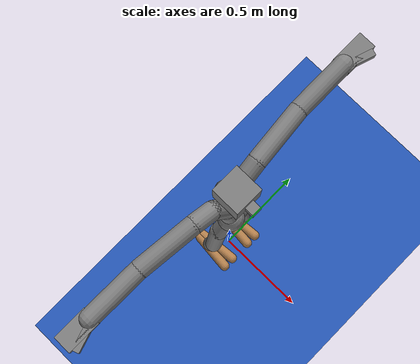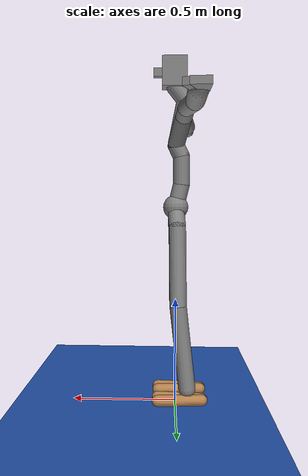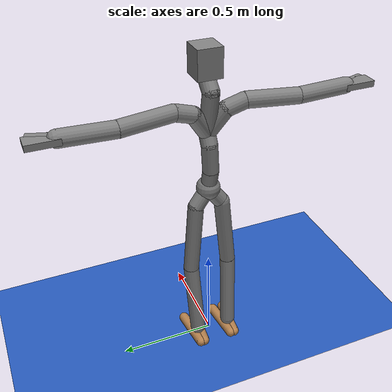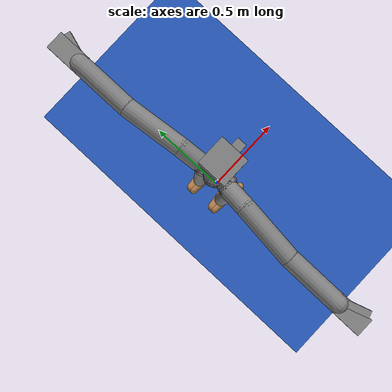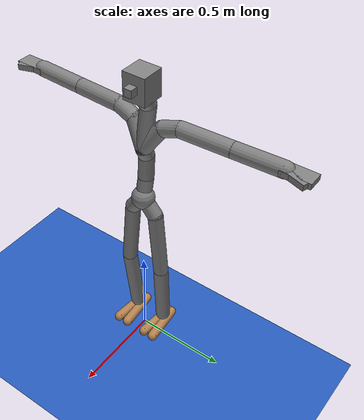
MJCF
<mujoco model="common-rig">
    <!--
            Robot Intelligence Lab
            Common Rig (Custom Humanoid) model

            @ Contact us : taemoon-jeong (motor_moon94@korea.ac.kr)
    -->
    <statistic extent="2" center="0 0 1"/>
    <compiler autolimits="true" inertiafromgeom="true" angle="radian"/>

    <default>
        <site size=".04" group="3"/>
        <motor ctrlrange="-1. 1." ctrllimited="true"/>
        <default class="body">
            <!-- geoms -->
            <geom type="capsule" condim="1" solimp=".9 .99 .003" solref=".015 1" material="self" density="800" />
            <default class="thigh">
                <geom size=".06"/>
            </default>
            <default class="shin">
                <geom fromto="0 0 0 0 0 -.3"  size=".049"/>
            </default>
            <default class="foot">
                <geom size=".027"/>
                <default class="foot1">
                    <geom fromto="-.07 -.01 -0.05 .14 -.03 -0.05"/>
                </default>
                <default class="foot2">
                    <geom fromto="-.07 .01 -0.05 .14  .03 -0.05"/>
                </default>
            </default>

            <!-- joints -->
            <joint type="hinge" damping="1" stiffness="5" armature=".01" limited="true" solimplimit="0 .99 .01"/>
            <default class="joint_big">
                <joint damping="5" stiffness="10"/>
                <default class="hip_x">
                <joint/>
                </default>
                <default class="hip_z">
                <joint/>
                </default>
                <default class="hip_y">
                <joint axis="0 1 0"/>
                </default>
                <default class="joint_big_stiff">
                <joint stiffness="20"/>
                </default>
            </default>
            <default class="knee">
                <joint pos="0 0 .02"/>
            </default>
            <default class="ankle">
                <joint/>
                <default class="ankle_y">
                <joint pos="0 0 .08" axis="0 1 0" stiffness="6"/>
                </default>
                <default class="ankle_x">
                <joint pos="0 0 .04" stiffness="3"/>
                </default>
            </default>
            <default class="shoulder">
                <joint />
            </default>
            <default class="elbow">
                <joint stiffness="0"/>
            </default>

            <!-- tracking site -->
            <default class="tracking_site">
                <site type="sphere" size="0.027" rgba="1 0 0 1" group="3"/>
            </default>
        </default>
    </default>

    <visual>
        <rgba haze="0.15 0.25 0.35 1"/>
        <quality shadowsize="2048"/>
        <global offwidth="800" offheight="800"/>
    </visual>

    <asset>
        <texture name="texgeom" type="cube" builtin="flat" mark="cross" width="127" height="1278"
            rgb1="0.8 0.6 0.4" rgb2="0.8 0.6 0.4" markrgb="1 1 1" random="0.01"/>
        <material name="matgeom" texture="texgeom" texuniform="true" rgba="0.8 0.6 0.4 1.0"/>
        <material name="self" rgba=".7 .5 .3 1"/>
        <texture name="blue_grid" type="2d" builtin="checker" rgb1=".02 .14 .44" rgb2=".27 .55 1" width="300" height="300" mark="edge" markrgb="1 1 1"/>
        <material name="blue_grid" texture="blue_grid" texrepeat="1 1" texuniform="true" reflectance=".2"/>
    </asset>

    <worldbody>
        <geom name="floor" type="plane" conaffinity="1" size="50 50 .05" material="blue_grid"/>
        <body name="base" pos="0 0 0.95">
            <freejoint name="base"/>
            <geom name="base" type="sphere" pos="0 0 0" size="0.06"/>
            <body name="pelvis" pos="0 0 0" euler="0 0 0" >
                <site name="tracking[pelvis]" class="tracking_site" pos="0 0 0.075" size=".05" />
                <geom name="base2lpelvis" type="capsule" fromto="0 0 0 -0.006815334782004356 0.06951973587274551 -0.09140622615814209"  size="0.04" />
                <geom name="base2rpelvis" type="capsule" fromto="0 0 0 -0.004319818690419197 -0.06767047941684723 -0.09052169322967529"  size="0.04" />
                <site name="pelvis_site" pos="0 0 0" size="0.01"/>
                <joint name="pelvis1" type="hinge" pos="0 0 0" axis="1 0 0" range="-1.5 1.5" armature="0.02" class="joint_big"/>
                <joint name="pelvis2" type="hinge" pos="0 0 0" axis="0 1 0" range="-1.5 1.5" armature="0.02" class="joint_big"/>
                <joint name="pelvis3" type="hinge" pos="0 0 0" axis="0 0 1" range="-1.5 1.5" armature="0.02" class="joint_big_stiff"/>

                <body name="left_hip" pos="-0.006815334782004356 0.06951973587274551 -0.09140622615814209" euler="0 0 0">
                    <geom name="lhip2lknee" type="capsule" fromto="0 0 0 -0.004495806992 0.03427654505 -0.3751985729"  size="0.04" />
                    <site name="lhip2lknee" type="capsule" fromto="0 0 0 -0.004495806992 0.03427654505 -0.3751985729"  size="0.04" />
                    <joint name="l_hip1" type="hinge" pos="0 0 0" axis="1 0 0" range="-0.3 0.3" armature="0.01" class="hip_x"/>
                    <joint name="l_hip2" type="hinge" pos="0 0 0" axis="0 1 0" range="-1.5 0.3" armature="0.01" class="hip_y"/>
                    <joint name="l_hip3" type="hinge" pos="0 0 0" axis="0 0 1" range="-0.5 0.3" armature="0.01" class="hip_z"/>
                    <body name="left_knee" pos="-0.004495806992 0.03427654505 -0.3751985729" euler="0 0 0">
                        <geom name="lknee2lankle" type="capsule" fromto="0 0 0 -0.04369332828 -0.01359570026 -0.3979604542"  size="0.04" />
                        <site name="lknee2lankle" type="capsule" fromto="0 0 0 -0.04369332828 -0.01359570026 -0.3979604542"  size="0.04" />
                        <joint name="l_knee" type="hinge" pos="0 0 0" axis="0 1 0" range="0.0175 2.0944" armature="0.0060" class="knee"/>
                        <body name="left_ankle" pos="-0.04369332828 -0.01359570026 -0.3979604542" euler="0 0 0">
                            <site name="lankle" type="box" pos="0 0 -0.025" size="0.03 0.03 0.025" />
                            <geom name="foot1_left" class="foot1"/>
                            <geom name="foot2_left" class="foot2"/>

                            <site name="foot_left" pos=".05 -.03 -0.05" type="sphere" rgba="0 1 0 1"  size=".027"/>
                            <site name="sp0" pos="-.07 0 -0.05" type="sphere" size=".027"/>
                            <site name="sp1" pos=".14 0 -0.05" type="sphere" size=".027"/>
                            <joint name="l_ankle1" type="hinge" pos="0 0 0" axis="0 1 0" range="-0.3 0.3"  armature="0.0008" class="ankle_y"/>
                            <joint name="l_ankle2" type="hinge" pos="0 0 0" axis="1 0 0" range="-0.3 0.3" armature="0.0006" class="ankle_x"/>
                            <joint name="l_ankle3" type="hinge" pos="0 0 0" axis="0 0 1" range="-0. 0.01" armature="0.0006" />
                        </body>
                    </body>
                </body>

                <body name="right_hip" pos="-0.006815334782004356 -0.06951973587274551 -0.09140622615814209" euler="0 0 0">
                    <geom name="rhip2rknee" type="capsule" fromto="0 0 0 -0.004495806992 -0.03427654505 -0.3751985729"  size="0.04" />
                    <site name="rhip2rknee" type="capsule" fromto="0 0 0 -0.004495806992 -0.03427654505 -0.3751985729"  size="0.04" />
                    <joint name="r_hip1" type="hinge" pos="0 0 0" axis="1 0 0" range="-0.3 0.3" armature="0.01" class="hip_x"/>
                    <joint name="r_hip2" type="hinge" pos="0 0 0" axis="0 1 0" range="-1.5 0.3" armature="0.01" class="hip_y"/>
                    <joint name="r_hip3" type="hinge" pos="0 0 0" axis="0 0 1" range="-0.5 0.3" armature="0.01" class="hip_z"/>
                    <body name="right_knee" pos="-0.004495806992 -0.03427654505 -0.3751985729" euler="0 0 0" >
                        <geom name="rknee2rankle" type="capsule" fromto="0 0 0 -0.04369332828 0.01359570026 -0.3979604542"  size="0.04" />
                        <site name="rknee2rankle" type="capsule" fromto="0 0 0 -0.04369332828 0.01359570026 -0.3979604542"  size="0.04" />
                        <joint name="r_knee" type="hinge" pos="0 0 0" axis="0 1 0" range="0.0175 2.0944" armature="0.0060" class="knee"/>
                        <body name="right_ankle" pos="-0.04369332828 0.01359570026 -0.3979604542" euler="0 0 0">
                            <site name="rankle" type="box" pos="0 0 -0.025" size="0.03 0.03 0.025" />
                            <geom name="foot1_right" class="foot1"/>
                            <geom name="foot2_right" class="foot2"/>

                            <site name="foot_right" pos=".05 .03 -0.05" type="sphere" size=".027" rgba="0 1 0 1" />
                            <site name="sp2" pos="-.07 0 -0.05" type="sphere" size=".027"/>
                            <site name="sp3" pos=".14 0 -0.05" type="sphere" size=".027"/>
                            <joint name="r_ankle1" type="hinge" pos="0 0 0" axis="0 1 0" range="-0.3 0.3" armature="0.0008" class="ankle_y"/>
                            <joint name="r_ankle2" type="hinge" pos="0 0 0" axis="1 0 0" range="-0.3 0.3" armature="0.0006" class="ankle_x"/>
                            <joint name="r_ankle3" type="hinge" pos="0 0 0" axis="0 0 1" range="-0. 0.01" armature="0.0006" />
                        </body>
                    </body>
                </body>

                <geom name="base2spine1" type="capsule" fromto="0 0 0 -0.02669631317257881 -0.00253287423402071 0.10896323621273041"  size="0.04"/>
                <site name="base2spine1" type="capsule" fromto="0 0 0 -0.02669631317257881 -0.00253287423402071 0.10896323621273041"  size="0.04" />
                <body name="spine1" pos="-0.02669631317257881 -0.00253287423402071 0.10896323621273041" euler="0 0 0" >
                    <geom name="spine2spine" type="capsule" fromto="0 0 0 0.001092471182 0.005487040151 0.1351804286"  size="0.04"/>
                    <joint name="spine1" type="hinge" pos="0 0 0" axis="0 1 0" range="-1.5 1.5" armature="0.02" class="joint_big"/>

                    <body name="spine2" pos="0.001092471182 0.005487040151 0.1351804286" euler="0 0 0">
                        <geom name="spine2spine2" type="capsule" fromto="0 0 0 0.02542456612 0.001456997823 0.05292221904"  size="0.04"/>
                        <site name="spine2spine2" type="capsule" fromto="0 0 0 0.02542456612 0.001456997823 0.05292221904"  size="0.04" />
                        <joint name="spine2" type="hinge" pos="0 0 0" axis="0 1 0" range="-1.5 1.5" armature="0.02" class="joint_big" />

                        <body name="spine3" pos="0.02542456612 0.001456997823 0.05292221904" euler="0 0 0">
                            <geom name="spine2spine3" type="capsule" fromto="0 0 0 -0.04285703227 -0.002778389724 0.2138703763"  size="0.04"/>
                            <site name="spine2spine3" type="capsule" fromto="0 0 0 -0.04285703227 -0.002778389724 0.2138703763"  size="0.04" />
                            <joint name="spine3" type="hinge" pos="0 0 0" axis="0 1 0" range="-1.5 1.5" armature="0.02" class="joint_big" />

                            <body name="neck" pos="-0.04285703227 -0.002778389724 0.2138703763" euler="0 0 0">
                                <geom name="neck2head" type="capsule" fromto="0 0 0 0.05134896934 0.00515184016 0.0649696588"  size="0.04" />

                                <body name="head" pos="0.05134896934 0.00515184016 0.06496965885" euler="0 0 0">
                                    <site name="head" type="box" pos="0 0  0.06496965885" size="0.06 0.06 0.07" />
                                    <geom name="head" type="box" pos="0 0  0.06496965885" size="0.06 0.06 0.07" />
                                    <geom name="nose" type="box" pos="0.05 0  0.06496965885" size="0.05 0.02 0.02" />
                                    <joint name="head1" type="hinge" pos="0 0 0" axis="1 0 0" range="-0 0.1" armature="0.02" />
                                    <joint name="head2" type="hinge" pos="0 0 0" axis="0 1 0" range="-0 0.1" armature="0.02" />
                                    <joint name="head3" type="hinge" pos="0 0 0" axis="0 0 1" range="-0 0.1" armature="0.02" />
                                </body>
                            </body>

                            <geom name="spine2lcollar" type="capsule" fromto="0 0 0 -0.03408960626 0.07884474564 0.1217493117"  size="0.04" />
                            <body name="left_collar" pos="-0.03408960626 0.07884474564 0.1217493117" euler="0 0 0">
                                <geom name="lcollar2lshoulder" type="capsule" fromto="0 0 0 -0.008868150413 0.09097691625 0.03046888113"  size="0.04" />
                                <joint name="l_collar1" type="hinge" pos="0 0 0" axis="1 0 0" range="-3.141592 3.141592" armature="0.0068" class="shoulder" />
                                <joint name="l_collar2" type="hinge" pos="0 0 0" axis="0 0 1" range="-3.141592 3.141592" armature="0.0051" class="shoulder" />
                                <joint name="l_collar3" type="hinge" pos="0 0 0" axis="0 1 0" range="-3.141592 3.141592" armature="0.0051" class="shoulder" />

                                <body name="left_shoulder" pos="-0.008868150413 0.09097691625 0.03046888113" euler="0 0 0">
                                    <geom name="lshoulder2lelbow" type="capsule" fromto="0 0 0 -0.02745642886 0.2596122175 -0.01277205348"  size="0.04" />
                                    <joint name="l_shoulder1" type="hinge" pos="0 0 0" axis="1 0 0" range="-3.141592 3.141592" armature="0.0068" class="shoulder" />
                                    <joint name="l_shoulder2" type="hinge" pos="0 0 0" axis="0 0 1" range="-3.141592 3.141592" armature="0.0051" class="shoulder" />
                                    <joint name="l_shoulder3" type="hinge" pos="0 0 0" axis="0 1 0" range="-3.141592 3.141592" armature="0.0051" class="shoulder" />

                                    <body name="left_elbow" pos="-0.02745642886 0.2596122175 -0.01277205348" euler="0 0 0">
                                        <geom name="lelbow2lwrist" type="capsule" fromto="0 0 0 -0.001170918345 0.2492336035 0.008986026049"  size="0.04" />
                                        <joint name="l_elbow" type="hinge" pos="0 0 0" axis="0 0 1" range="-2.61666666667 -0.01" armature="0.0028" class="elbow" />
                                        <site name="tracking[lhand]" class="tracking_site" pos="-0.001170918345 0.2492336035 0.008986026049" />
                                        <body name="left_wrist" pos="-0.001170918345 0.2492336035 0.008986026049" euler="0 0 0">
                                            <geom name="lthumb" type="box" pos="0.03 0.05 0" size="0.015 0.07 0.015" euler="0 0 -60"/>
                                            <geom name="lpalm" type="box" pos="0 0.06 0" size="0.04 0.075 0.015" euler="0 0 0"/>
                                            <joint name="l_wrist1" type="hinge" pos="0 0 0" axis="0 1 0" range="-0 0.1" armature="0.02" />
                                            <joint name="l_wrist2" type="hinge" pos="0 0 0" axis="0 0 1" range="-0 0.1" armature="0.02" />
                                            <joint name="l_wrist3" type="hinge" pos="0 0 0" axis="1 0 0" range="-0 0.1" armature="0.02" />
                                        </body>
                                    </body>
                                </body>
                            </body>

                            <geom name="spine2rcollar" type="capsule" fromto="0 0 0 -0.03408960626 -0.07884474564 0.1217493117"  size="0.04" />
                            <body name="right_collar" pos="-0.03408960626 -0.07884474564 0.1217493117" euler="0 0 0">
                                <geom name="rcollar2rshoulder" type="capsule" fromto="0 0 0 -0.008868150413 -0.09097691625 0.03046888113"  size="0.04" />
                                <joint name="r_collar1" type="hinge" pos="0 0 0" axis="1 0 0" range="-3.141592 3.141592" armature="0.0068" class="shoulder" />
                                <joint name="r_collar2" type="hinge" pos="0 0 0" axis="0 0 1" range="-3.141592 3.141592" armature="0.0051" class="shoulder" />
                                <joint name="r_collar3" type="hinge" pos="0 0 0" axis="0 1 0" range="-3.141592 3.141592" armature="0.0051" class="shoulder" />

                                <body name="right_shoulder" pos="-0.008868150413 -0.09097691625 0.03046888113" euler="0 0 0">
                                    <geom name="rshoulder2relbow" type="capsule" fromto="0 0 0 -0.02745642886 -0.2596122175 -0.01277205348"  size="0.04" />
                                    <joint name="r_shoulder1" type="hinge" pos="0 0 0" axis="1 0 0" range="-3.141592 3.141592" armature="0.0068" class="shoulder" />
                                    <joint name="r_shoulder2" type="hinge" pos="0 0 0" axis="0 0 1" range="-3.141592 3.141592" armature="0.0051" class="shoulder" />
                                    <joint name="r_shoulder3" type="hinge" pos="0 0 0" axis="0 1 0" range="-3.141592 3.141592" armature="0.0051" class="shoulder" />

                                    <body name="right_elbow" pos="-0.02745642886 -0.2596122175 -0.01277205348" euler="0 0 0">
                                        <geom name="relbow2rwrist" type="capsule" fromto="0 0 0 -0.001170918345 -0.2492336035 0.008986026049"  size="0.04" />
                                        <joint name="r_elbow" type="hinge" pos="0 0 0" axis="0 0 1" range="0.01 2.61666666667" armature="0.0028" class="elbow" />
                                        <site name="tracking[rhand]" class="tracking_site" pos="-0.001170918345 -0.2492336035 0.008986026049" />
                                        <body name="right_wrist" pos="-0.001170918345 -0.2492336035 0.008986026049" euler="0 0 0">
                                            <geom name="rthumb" type="box" pos="0.03 -0.05 0" size="0.015 0.07 0.015" euler="0 0 60"/>
                                            <geom name="rpalm" type="box" pos="0 -0.06 0" size="0.04 0.075 0.015" euler="0 0 0"/>
                                            <joint name="r_wrist1" type="hinge" pos="0 0 0" axis="0 1 0" range="-0 0.1" armature="0.02" />
                                            <joint name="r_wrist2" type="hinge" pos="0 0 0" axis="0 0 1" range="-0 0.1" armature="0.02" />
                                            <joint name="r_wrist3" type="hinge" pos="0 0 0" axis="1 0 0" range="-0 0.1" armature="0.02" />
                                        </body>
                                    </body>
                                </body>
                            </body>
                        </body>
                    </body>
                </body>
            </body>
        </body>
    </worldbody>

    <actuator>
        <motor name="pelvis1"       gear="40" joint="pelvis1" />
        <motor name="pelvis2"       gear="40" joint="pelvis2" />
        <motor name="pelvis3"       gear="40" joint="pelvis3" />
        <motor name="spine1"       gear="40" joint="spine1" />
        <motor name="spine2"       gear="40" joint="spine2" />
        <motor name="spine3"       gear="40" joint="spine3" />

        <motor name="r_shoulder1"       gear="20" joint="r_shoulder1" />
        <motor name="r_shoulder2"       gear="20" joint="r_shoulder2" />
        <motor name="r_shoulder3"       gear="20" joint="r_shoulder3" />
        <motor name="r_elbow"       gear="40" joint="r_elbow" />
        <motor name="l_shoulder1"       gear="20" joint="l_shoulder1" />
        <motor name="l_shoulder2"       gear="20" joint="l_shoulder2" />
        <motor name="l_shoulder3"       gear="20" joint="l_shoulder3" />
        <motor name="l_elbow"       gear="40" joint="l_elbow" />
        <motor name="r_hip1"       gear="40" joint="r_hip1" />
        <motor name="r_hip2"       gear="120" joint="r_hip2" />
        <motor name="r_hip3"       gear="40" joint="r_hip3" />
        <motor name="r_knee"       gear="100" joint="r_knee" />
        <motor name="r_ankle1"       gear="20" joint="r_ankle1" />
        <motor name="r_ankle2"       gear="20" joint="r_ankle2" />
        <motor name="l_hip1"       gear="40" joint="l_hip1" />
        <motor name="l_hip2"       gear="120" joint="l_hip2" />
        <motor name="l_hip3"       gear="40" joint="l_hip3" />
        <motor name="l_knee"       gear="100" joint="l_knee" />
        <motor name="l_ankle1"       gear="20" joint="l_ankle1" />
        <motor name="l_ankle2"       gear="20" joint="l_ankle2" />
    </actuator>

    <!-- exclude -->
    <contact>
        <exclude body1="neck" body2="right_shoulder"/>
        <exclude body1="neck" body2="right_collar"/>
        <exclude body1="spine3" body2="right_shoulder"/>
        <exclude body1="spine3" body2="right_collar"/>
        <exclude body1="right_shoulder" body2="right_elbow"/>
        <exclude body1="right_elbow" body2="right_wrist"/>

        <exclude body1="neck" body2="spine3"/>
        <exclude body1="spine2" body2="spine3"/>
        <exclude body1="spine1" body2="spine2"/>
        <exclude body1="spine1" body2="spine3"/>
        <exclude body1="neck" body2="spine2"/>

        <exclude body1="neck" body2="left_shoulder"/>
        <exclude body1="neck" body2="left_collar"/>
        <exclude body1="spine3" body2="left_shoulder"/>
        <exclude body1="spine3" body2="left_collar"/>
        <exclude body1="left_shoulder" body2="left_elbow"/>
        <exclude body1="left_elbow" body2="left_wrist"/>

        <exclude body1="neck" body2="spine3"/>
        <exclude body1="spine1" body2="pelvis"/>
        <exclude body1="pelvis" body2="base"/>

        <exclude body1="pelvis" body2="right_hip"/>
        <exclude body1="right_hip" body2="right_knee"/>
        <exclude body1="right_knee" body2="right_ankle"/>

        <exclude body1="pelvis" body2="left_hip"/>
        <exclude body1="left_hip" body2="left_knee"/>
        <exclude body1="left_knee" body2="left_ankle"/>
    </contact>

</mujoco>
